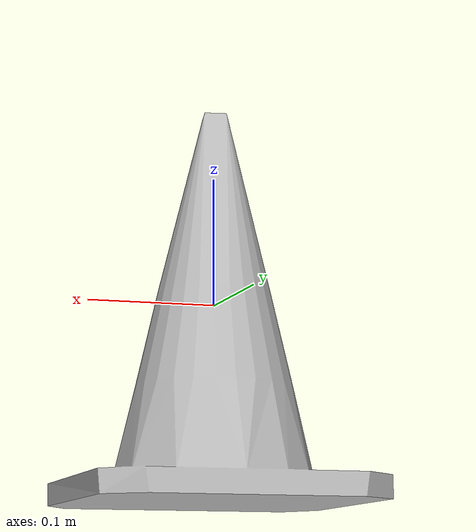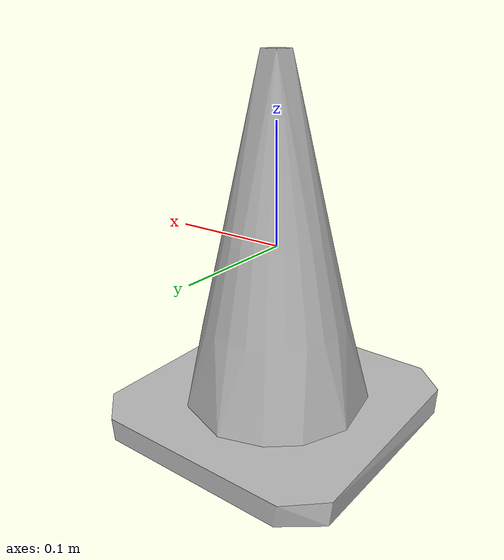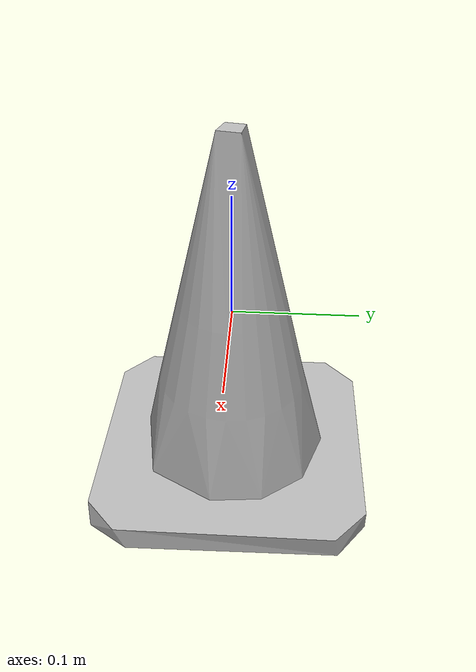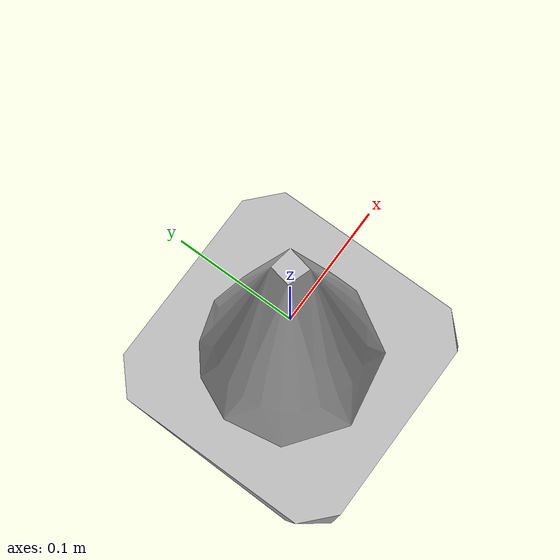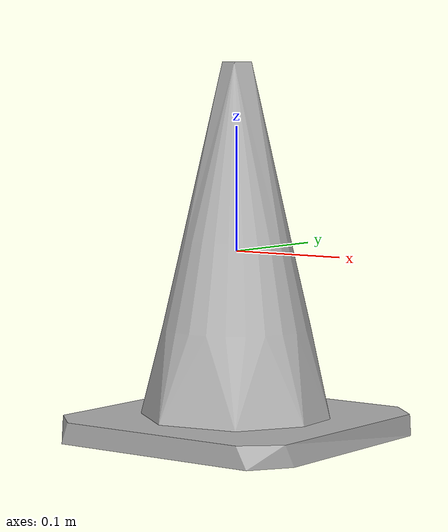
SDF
<sdf version="1.6">
  <model name="cone_blue">
    <link name="link">
      <visual name="visual">
        <geometry>
          <mesh>
            <uri>file://cone_blue.stl</uri>
          </mesh>
        </geometry>
      </visual>
      <collision name="collision">
        <geometry>
          <mesh>
            <uri>file://cone_blue.stl</uri>
          </mesh>
        </geometry>
      </collision>
      <inertial>
        <mass>1.0</mass>
        <inertia>
          <ixx>0.1667</ixx>
          <ixy>0</ixy>
          <ixz>0</ixz>
          <iyy>0.1667</iyy>
          <iyz>0</iyz>
          <izz>0.1667</izz>
        </inertia>
      </inertial>
    </link>
  </model>
</sdf>
